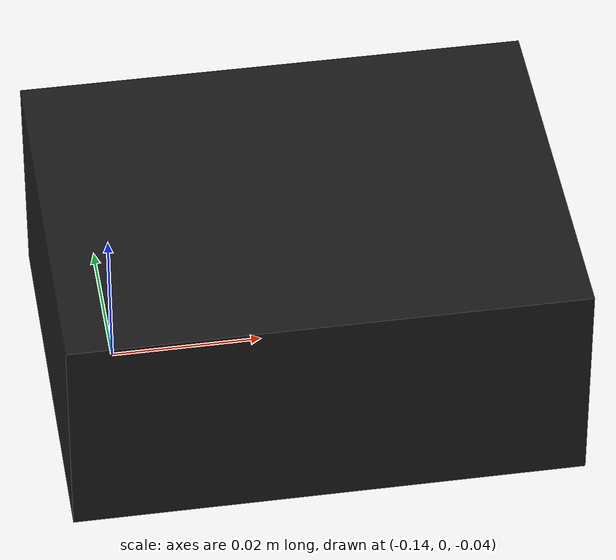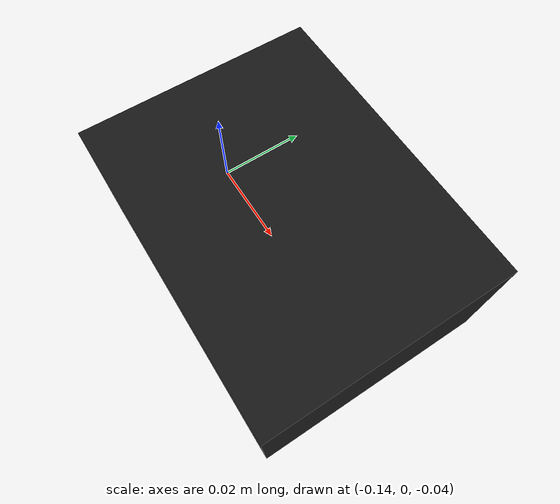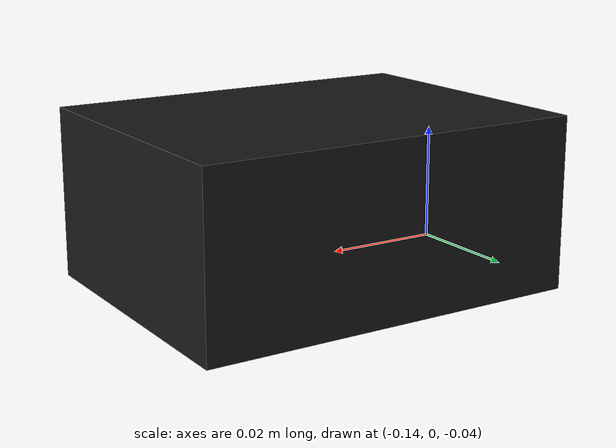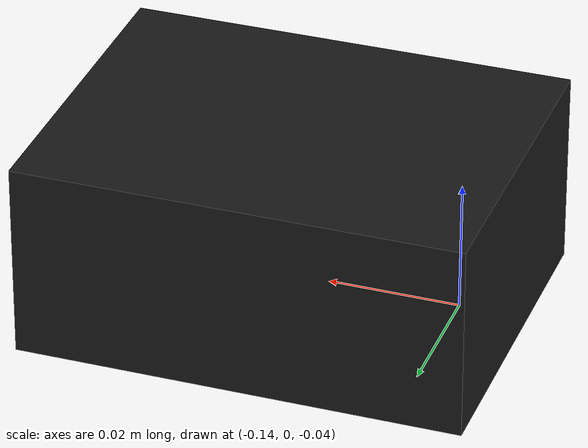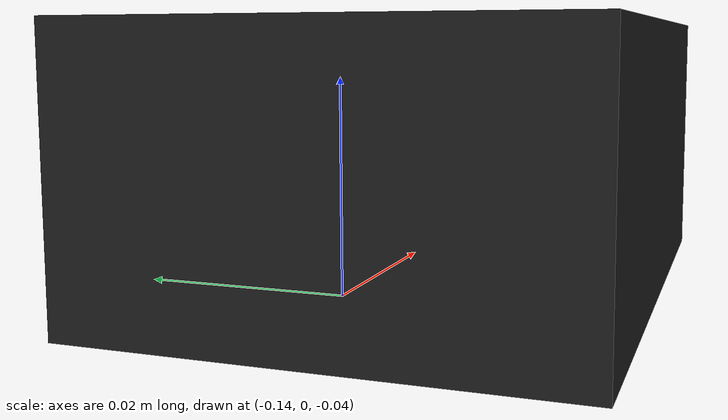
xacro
<?xml version="1.0"?>
<robot name="scun_gun" xmlns:xacro="http://www.ros.org/wiki/xacro">

  <xacro:include filename="imu.xacro" />

  <link name="base_link" />

  <link name="laser_link" />

  <joint name="laser_joint" type="fixed">
    <parent link="base_link" />
    <child link="laser_link" />
    <origin xyz="0 0 0" rpy="0 0 0" />
  </joint>

  <xacro:bno085_imu parent="base_link">
    <origin xyz="-0.1146 0.0 -0.0445" rpy="0 0 3.14159265" />
  </xacro:bno085_imu>

</robot>

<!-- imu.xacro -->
<robot xmlns:xacro="http://www.ros.org/wiki/xacro">

  <xacro:macro name="bno085_imu" params="parent *origin">

    <material name="black"> <color rgba="0.1 0.1 0.1 1"/> </material>
    <material name="green"> <color rgba="0.0 0.8 0.0 1"/> </material>

    <joint name="imu_box_joint" type="fixed">
      <xacro:insert_block name="origin" />
      <parent link="${parent}"/>
      <child link="imu_box_base"/>
    </joint>

    <link name="imu_box_base">
      <visual>
        <origin xyz="0 0 0.015" rpy="0 0 0"/>
        <geometry>
          <box size="0.0677 0.0518 0.030"/>
        </geometry>
        <material name="black"/>
      </visual>
    </link>

    <joint name="base_to_pcb_joint" type="fixed">
      <parent link="imu_box_base"/>
      <child link="imu_pcb"/>
      <origin xyz="0 0 0.021" rpy="0 0 0"/>
    </joint>

    <link name="imu_pcb">
      <visual>
        <geometry>
          <box size="0.02 0.02 0.002"/>
        </geometry>
        <material name="green"/>
      </visual>
    </link>

    <joint name="pcb_to_sensor_joint" type="fixed">
      <parent link="imu_pcb"/>
      <child link="imu_link"/>
      <origin xyz="0 0 0.001" rpy="0 0 0"/>
    </joint>

    <link name="imu_link"/>

  </xacro:macro>
</robot>
